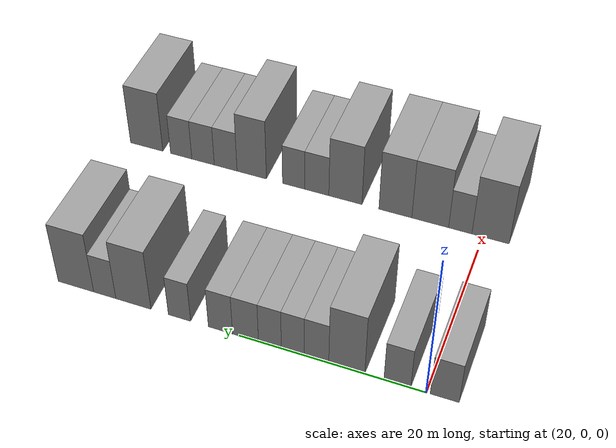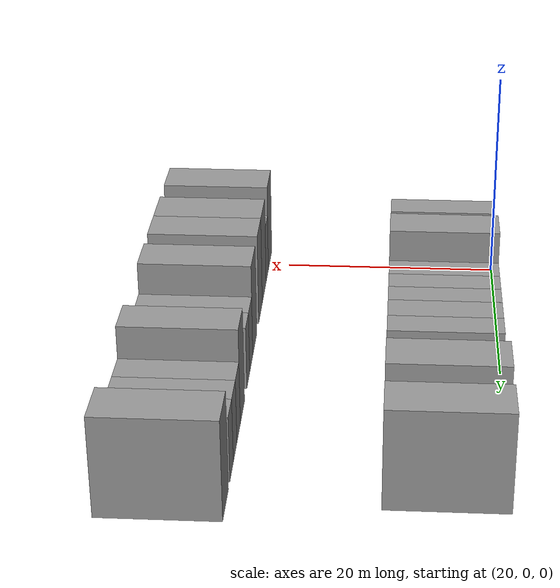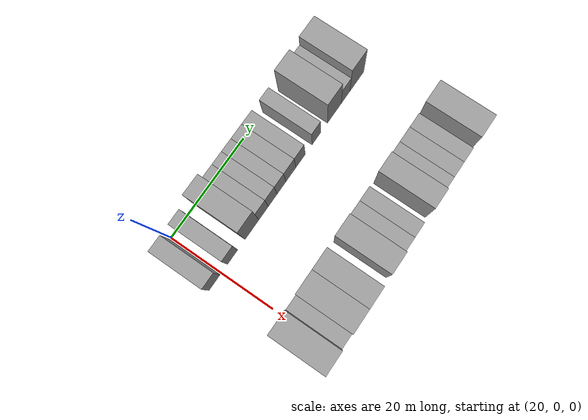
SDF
<sdf version="1.6">
 <world name="default">
  <model name="building_49">
   <static>1</static>
   <pose>25.0000 -1.8331 0 0.000000 0.000000 0.000000</pose>
   <link name="link">
    <pose>0 0 3.00 0 0 0</pose>
    <collision name="collision"><geometry><box><size>10.0000 2.9627 6.0000</size></box></geometry></collision>
    <visual name="visual">
     <cast_shadows>0</cast_shadows>
     <geometry><box><size>10.0000 2.9627 6.0000</size></box></geometry>
     <material>
      <script>
       <uri>model://grey_wall/materials/scripts</uri>
       <uri>model://grey_wall/materials/textures</uri>
       <name>vrc/grey_wall</name>
      </script>
     </material>
    </visual>
   </link>
  </model>
  <model name="building_50">
   <static>1</static>
   <pose>25.0000 3.0453 0 0.000000 0.000000 0.000000</pose>
   <link name="link">
    <pose>0 0 3.00 0 0 0</pose>
    <collision name="collision"><geometry><box><size>10.0000 2.7942 6.0000</size></box></geometry></collision>
    <visual name="visual">
     <cast_shadows>0</cast_shadows>
     <geometry><box><size>10.0000 2.7942 6.0000</size></box></geometry>
     <material>
      <script>
       <uri>model://grey_wall/materials/scripts</uri>
       <uri>model://grey_wall/materials/textures</uri>
       <name>vrc/grey_wall</name>
      </script>
     </material>
    </visual>
   </link>
  </model>
  <model name="building_51">
   <static>1</static>
   <pose>25.0000 8.3558 0 0.000000 0.000000 0.000000</pose>
   <link name="link">
    <pose>0 0 4.50 0 0 0</pose>
    <collision name="collision"><geometry><box><size>10.0000 3.8267 9.0000</size></box></geometry></collision>
    <visual name="visual">
     <cast_shadows>0</cast_shadows>
     <geometry><box><size>10.0000 3.8267 9.0000</size></box></geometry>
     <material>
      <script>
       <uri>model://grey_wall/materials/scripts</uri>
       <uri>model://grey_wall/materials/textures</uri>
       <name>vrc/grey_wall</name>
      </script>
     </material>
    </visual>
   </link>
  </model>
  <model name="building_52">
   <static>1</static>
   <pose>25.0000 11.5897 0 0.000000 0.000000 0.000000</pose>
   <link name="link">
    <pose>0 0 3.00 0 0 0</pose>
    <collision name="collision"><geometry><box><size>10.0000 2.6410 6.0000</size></box></geometry></collision>
    <visual name="visual">
     <cast_shadows>0</cast_shadows>
     <geometry><box><size>10.0000 2.6410 6.0000</size></box></geometry>
     <material>
      <script>
       <uri>model://grey_wall/materials/scripts</uri>
       <uri>model://grey_wall/materials/textures</uri>
       <name>vrc/grey_wall</name>
      </script>
     </material>
    </visual>
   </link>
  </model>
  <model name="building_53">
   <static>1</static>
   <pose>25.0000 14.1495 0 0.000000 0.000000 0.000000</pose>
   <link name="link">
    <pose>0 0 3.00 0 0 0</pose>
    <collision name="collision"><geometry><box><size>10.0000 2.4786 6.0000</size></box></geometry></collision>
    <visual name="visual">
     <cast_shadows>0</cast_shadows>
     <geometry><box><size>10.0000 2.4786 6.0000</size></box></geometry>
     <material>
      <script>
       <uri>model://grey_wall/materials/scripts</uri>
       <uri>model://grey_wall/materials/textures</uri>
       <name>vrc/grey_wall</name>
      </script>
     </material>
    </visual>
   </link>
  </model>
  <model name="building_54">
   <static>1</static>
   <pose>25.0000 16.6423 0 0.000000 0.000000 0.000000</pose>
   <link name="link">
    <pose>0 0 3.00 0 0 0</pose>
    <collision name="collision"><geometry><box><size>10.0000 2.5071 6.0000</size></box></geometry></collision>
    <visual name="visual">
     <cast_shadows>0</cast_shadows>
     <geometry><box><size>10.0000 2.5071 6.0000</size></box></geometry>
     <material>
      <script>
       <uri>model://grey_wall/materials/scripts</uri>
       <uri>model://grey_wall/materials/textures</uri>
       <name>vrc/grey_wall</name>
      </script>
     </material>
    </visual>
   </link>
  </model>
  <model name="building_55">
   <static>1</static>
   <pose>25.0000 19.3289 0 0.000000 0.000000 0.000000</pose>
   <link name="link">
    <pose>0 0 3.00 0 0 0</pose>
    <collision name="collision"><geometry><box><size>10.0000 2.8659 6.0000</size></box></geometry></collision>
    <visual name="visual">
     <cast_shadows>0</cast_shadows>
     <geometry><box><size>10.0000 2.8659 6.0000</size></box></geometry>
     <material>
      <script>
       <uri>model://grey_wall/materials/scripts</uri>
       <uri>model://grey_wall/materials/textures</uri>
       <name>vrc/grey_wall</name>
      </script>
     </material>
    </visual>
   </link>
  </model>
  <model name="building_56">
   <static>1</static>
   <pose>25.0000 22.1163 0 0.000000 0.000000 0.000000</pose>
   <link name="link">
    <pose>0 0 3.00 0 0 0</pose>
    <collision name="collision"><geometry><box><size>10.0000 2.7088 6.0000</size></box></geometry></collision>
    <visual name="visual">
     <cast_shadows>0</cast_shadows>
     <geometry><box><size>10.0000 2.7088 6.0000</size></box></geometry>
     <material>
      <script>
       <uri>model://grey_wall/materials/scripts</uri>
       <uri>model://grey_wall/materials/textures</uri>
       <name>vrc/grey_wall</name>
      </script>
     </material>
    </visual>
   </link>
  </model>
  <model name="building_57">
   <static>1</static>
   <pose>25.0000 26.7420 0 0.000000 0.000000 0.000000</pose>
   <link name="link">
    <pose>0 0 3.00 0 0 0</pose>
    <collision name="collision"><geometry><box><size>10.0000 2.5427 6.0000</size></box></geometry></collision>
    <visual name="visual">
     <cast_shadows>0</cast_shadows>
     <geometry><box><size>10.0000 2.5427 6.0000</size></box></geometry>
     <material>
      <script>
       <uri>model://grey_wall/materials/scripts</uri>
       <uri>model://grey_wall/materials/textures</uri>
       <name>vrc/grey_wall</name>
      </script>
     </material>
    </visual>
   </link>
  </model>
  <model name="building_58">
   <static>1</static>
   <pose>25.0000 32.0538 0 0.000000 0.000000 0.000000</pose>
   <link name="link">
    <pose>0 0 4.50 0 0 0</pose>
    <collision name="collision"><geometry><box><size>10.0000 4.0809 9.0000</size></box></geometry></collision>
    <visual name="visual">
     <cast_shadows>0</cast_shadows>
     <geometry><box><size>10.0000 4.0809 9.0000</size></box></geometry>
     <material>
      <script>
       <uri>model://grey_wall/materials/scripts</uri>
       <uri>model://grey_wall/materials/textures</uri>
       <name>vrc/grey_wall</name>
      </script>
     </material>
    </visual>
   </link>
  </model>
  <model name="building_59">
   <static>1</static>
   <pose>25.0000 35.3955 0 0.000000 0.000000 0.000000</pose>
   <link name="link">
    <pose>0 0 3.00 0 0 0</pose>
    <collision name="collision"><geometry><box><size>10.0000 2.6026 6.0000</size></box></geometry></collision>
    <visual name="visual">
     <cast_shadows>0</cast_shadows>
     <geometry><box><size>10.0000 2.6026 6.0000</size></box></geometry>
     <material>
      <script>
       <uri>model://grey_wall/materials/scripts</uri>
       <uri>model://grey_wall/materials/textures</uri>
       <name>vrc/grey_wall</name>
      </script>
     </material>
    </visual>
   </link>
  </model>
  <model name="building_60">
   <static>1</static>
   <pose>25.0000 38.8089 0 0.000000 0.000000 0.000000</pose>
   <link name="link">
    <pose>0 0 4.50 0 0 0</pose>
    <collision name="collision"><geometry><box><size>10.0000 4.2241 9.0000</size></box></geometry></collision>
    <visual name="visual">
     <cast_shadows>0</cast_shadows>
     <geometry><box><size>10.0000 4.2241 9.0000</size></box></geometry>
     <material>
      <script>
       <uri>model://grey_wall/materials/scripts</uri>
       <uri>model://grey_wall/materials/textures</uri>
       <name>vrc/grey_wall</name>
      </script>
     </material>
    </visual>
   </link>
  </model>
  <model name="building_142">
   <static>1</static>
   <pose>47.0000 -0.8253 0 0.000000 0.000000 0.000000</pose>
   <link name="link">
    <pose>0 0 4.50 0 0 0</pose>
    <collision name="collision"><geometry><box><size>10.0000 4.2374 9.0000</size></box></geometry></collision>
    <visual name="visual">
     <cast_shadows>0</cast_shadows>
     <geometry><box><size>10.0000 4.2374 9.0000</size></box></geometry>
     <material>
      <script>
       <uri>model://grey_wall/materials/scripts</uri>
       <uri>model://grey_wall/materials/textures</uri>
       <name>vrc/grey_wall</name>
      </script>
     </material>
    </visual>
   </link>
  </model>
  <model name="building_143">
   <static>1</static>
   <pose>47.0000 2.6254 0 0.000000 0.000000 0.000000</pose>
   <link name="link">
    <pose>0 0 3.00 0 0 0</pose>
    <collision name="collision"><geometry><box><size>10.0000 2.6640 6.0000</size></box></geometry></collision>
    <visual name="visual">
     <cast_shadows>0</cast_shadows>
     <geometry><box><size>10.0000 2.6640 6.0000</size></box></geometry>
     <material>
      <script>
       <uri>model://grey_wall/materials/scripts</uri>
       <uri>model://grey_wall/materials/textures</uri>
       <name>vrc/grey_wall</name>
      </script>
     </material>
    </visual>
   </link>
  </model>
  <model name="building_144">
   <static>1</static>
   <pose>47.0000 6.0896 0 0.000000 0.000000 0.000000</pose>
   <link name="link">
    <pose>0 0 4.50 0 0 0</pose>
    <collision name="collision"><geometry><box><size>10.0000 4.2644 9.0000</size></box></geometry></collision>
    <visual name="visual">
     <cast_shadows>0</cast_shadows>
     <geometry><box><size>10.0000 4.2644 9.0000</size></box></geometry>
     <material>
      <script>
       <uri>model://grey_wall/materials/scripts</uri>
       <uri>model://grey_wall/materials/textures</uri>
       <name>vrc/grey_wall</name>
      </script>
     </material>
    </visual>
   </link>
  </model>
  <model name="building_145">
   <static>1</static>
   <pose>47.0000 10.1613 0 0.000000 0.000000 0.000000</pose>
   <link name="link">
    <pose>0 0 4.50 0 0 0</pose>
    <collision name="collision"><geometry><box><size>10.0000 3.8790 9.0000</size></box></geometry></collision>
    <visual name="visual">
     <cast_shadows>0</cast_shadows>
     <geometry><box><size>10.0000 3.8790 9.0000</size></box></geometry>
     <material>
      <script>
       <uri>model://grey_wall/materials/scripts</uri>
       <uri>model://grey_wall/materials/textures</uri>
       <name>vrc/grey_wall</name>
      </script>
     </material>
    </visual>
   </link>
  </model>
  <model name="building_146">
   <static>1</static>
   <pose>47.0000 16.0942 0 0.000000 0.000000 0.000000</pose>
   <link name="link">
    <pose>0 0 4.50 0 0 0</pose>
    <collision name="collision"><geometry><box><size>10.0000 3.9869 9.0000</size></box></geometry></collision>
    <visual name="visual">
     <cast_shadows>0</cast_shadows>
     <geometry><box><size>10.0000 3.9869 9.0000</size></box></geometry>
     <material>
      <script>
       <uri>model://grey_wall/materials/scripts</uri>
       <uri>model://grey_wall/materials/textures</uri>
       <name>vrc/grey_wall</name>
      </script>
     </material>
    </visual>
   </link>
  </model>
  <model name="building_147">
   <static>1</static>
   <pose>47.0000 19.5535 0 0.000000 0.000000 0.000000</pose>
   <link name="link">
    <pose>0 0 3.00 0 0 0</pose>
    <collision name="collision"><geometry><box><size>10.0000 2.9317 6.0000</size></box></geometry></collision>
    <visual name="visual">
     <cast_shadows>0</cast_shadows>
     <geometry><box><size>10.0000 2.9317 6.0000</size></box></geometry>
     <material>
      <script>
       <uri>model://grey_wall/materials/scripts</uri>
       <uri>model://grey_wall/materials/textures</uri>
       <name>vrc/grey_wall</name>
      </script>
     </material>
    </visual>
   </link>
  </model>
  <model name="building_148">
   <static>1</static>
   <pose>47.0000 22.3784 0 0.000000 0.000000 0.000000</pose>
   <link name="link">
    <pose>0 0 3.00 0 0 0</pose>
    <collision name="collision"><geometry><box><size>10.0000 2.7182 6.0000</size></box></geometry></collision>
    <visual name="visual">
     <cast_shadows>0</cast_shadows>
     <geometry><box><size>10.0000 2.7182 6.0000</size></box></geometry>
     <material>
      <script>
       <uri>model://grey_wall/materials/scripts</uri>
       <uri>model://grey_wall/materials/textures</uri>
       <name>vrc/grey_wall</name>
      </script>
     </material>
    </visual>
   </link>
  </model>
  <model name="building_149">
   <static>1</static>
   <pose>47.0000 27.5688 0 0.000000 0.000000 0.000000</pose>
   <link name="link">
    <pose>0 0 4.50 0 0 0</pose>
    <collision name="collision"><geometry><box><size>10.0000 3.6625 9.0000</size></box></geometry></collision>
    <visual name="visual">
     <cast_shadows>0</cast_shadows>
     <geometry><box><size>10.0000 3.6625 9.0000</size></box></geometry>
     <material>
      <script>
       <uri>model://grey_wall/materials/scripts</uri>
       <uri>model://grey_wall/materials/textures</uri>
       <name>vrc/grey_wall</name>
      </script>
     </material>
    </visual>
   </link>
  </model>
  <model name="building_150">
   <static>1</static>
   <pose>47.0000 30.8386 0 0.000000 0.000000 0.000000</pose>
   <link name="link">
    <pose>0 0 3.00 0 0 0</pose>
    <collision name="collision"><geometry><box><size>10.0000 2.8771 6.0000</size></box></geometry></collision>
    <visual name="visual">
     <cast_shadows>0</cast_shadows>
     <geometry><box><size>10.0000 2.8771 6.0000</size></box></geometry>
     <material>
      <script>
       <uri>model://grey_wall/materials/scripts</uri>
       <uri>model://grey_wall/materials/textures</uri>
       <name>vrc/grey_wall</name>
      </script>
     </material>
    </visual>
   </link>
  </model>
  <model name="building_151">
   <static>1</static>
   <pose>47.0000 33.7108 0 0.000000 0.000000 0.000000</pose>
   <link name="link">
    <pose>0 0 3.00 0 0 0</pose>
    <collision name="collision"><geometry><box><size>10.0000 2.8673 6.0000</size></box></geometry></collision>
    <visual name="visual">
     <cast_shadows>0</cast_shadows>
     <geometry><box><size>10.0000 2.8673 6.0000</size></box></geometry>
     <material>
      <script>
       <uri>model://grey_wall/materials/scripts</uri>
       <uri>model://grey_wall/materials/textures</uri>
       <name>vrc/grey_wall</name>
      </script>
     </material>
    </visual>
   </link>
  </model>
  <model name="building_152">
   <static>1</static>
   <pose>47.0000 36.5100 0 0.000000 0.000000 0.000000</pose>
   <link name="link">
    <pose>0 0 3.00 0 0 0</pose>
    <collision name="collision"><geometry><box><size>10.0000 2.7312 6.0000</size></box></geometry></collision>
    <visual name="visual">
     <cast_shadows>0</cast_shadows>
     <geometry><box><size>10.0000 2.7312 6.0000</size></box></geometry>
     <material>
      <script>
       <uri>model://grey_wall/materials/scripts</uri>
       <uri>model://grey_wall/materials/textures</uri>
       <name>vrc/grey_wall</name>
      </script>
     </material>
    </visual>
   </link>
  </model>
  <model name="building_153">
   <static>1</static>
   <pose>47.0000 40.9857 0 0.000000 0.000000 0.000000</pose>
   <link name="link">
    <pose>0 0 4.50 0 0 0</pose>
    <collision name="collision"><geometry><box><size>10.0000 4.2202 9.0000</size></box></geometry></collision>
    <visual name="visual">
     <cast_shadows>0</cast_shadows>
     <geometry><box><size>10.0000 4.2202 9.0000</size></box></geometry>
     <material>
      <script>
       <uri>model://grey_wall/materials/scripts</uri>
       <uri>model://grey_wall/materials/textures</uri>
       <name>vrc/grey_wall</name>
      </script>
     </material>
    </visual>
   </link>
  </model>
 </world>
</sdf>
